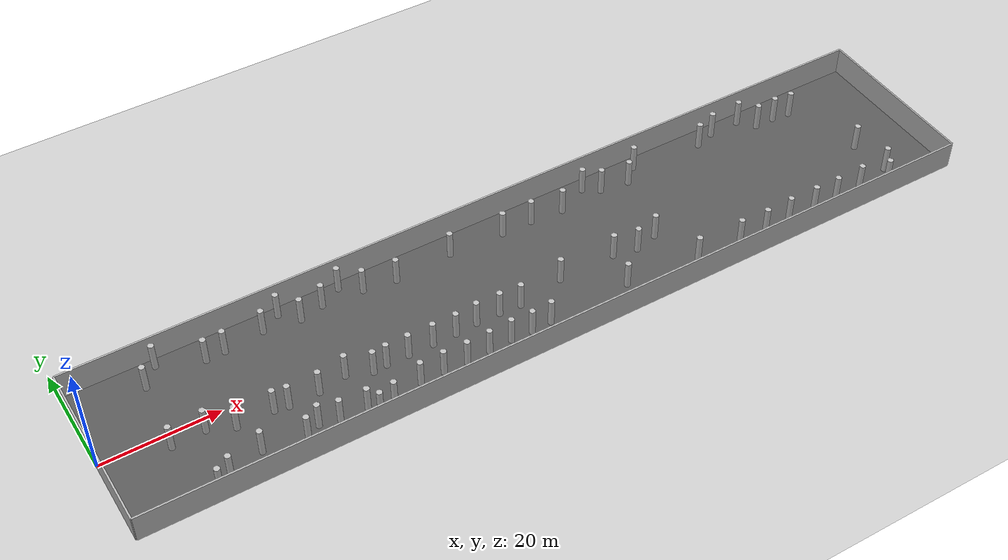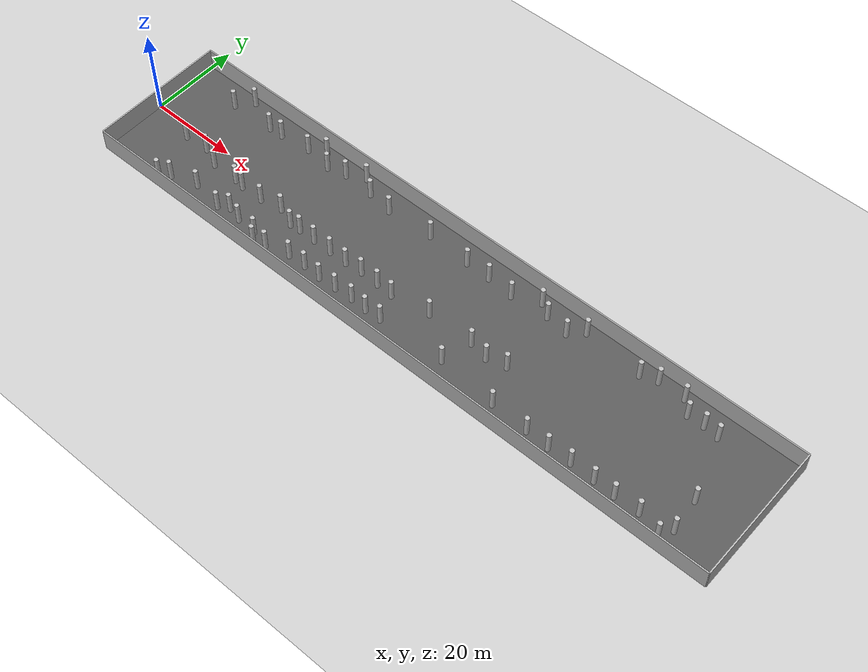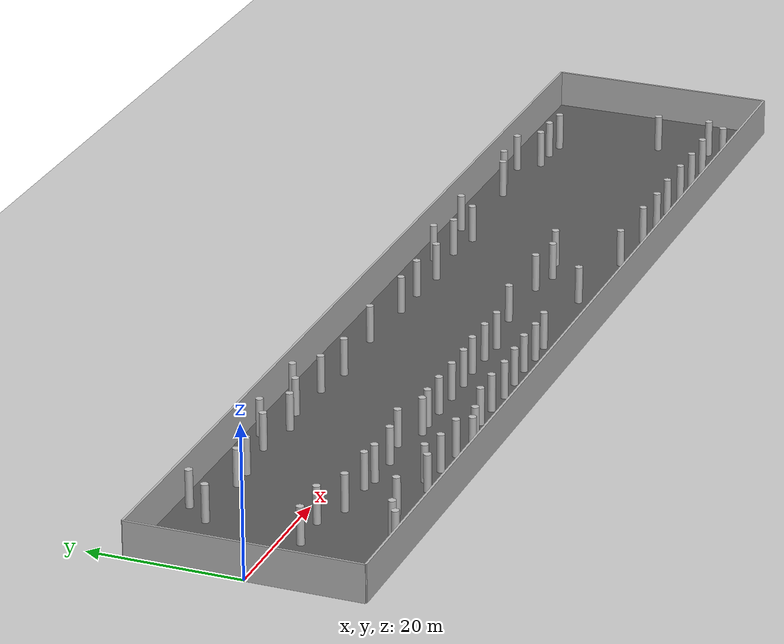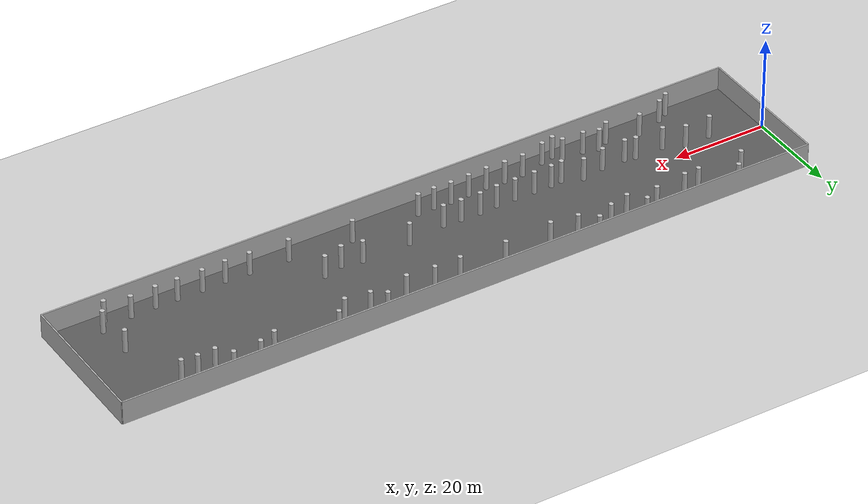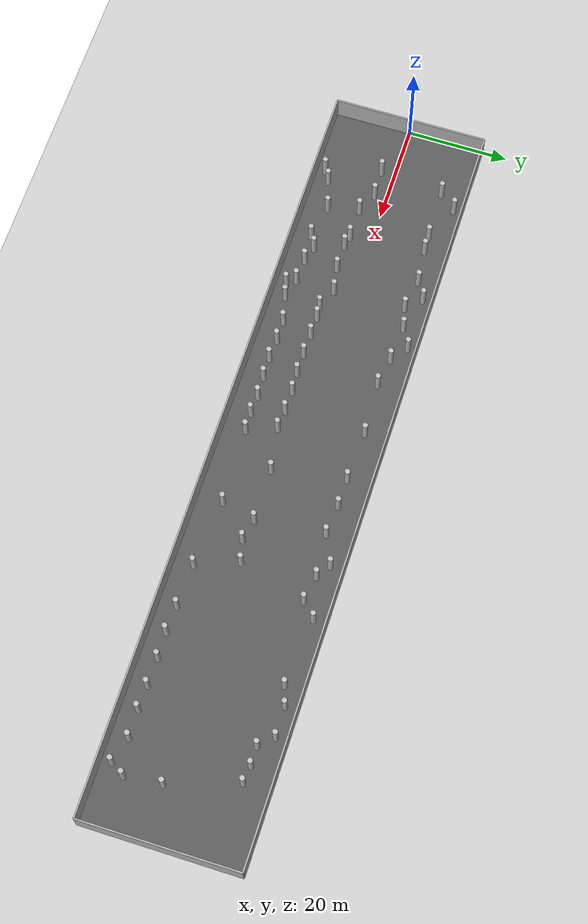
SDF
<?xml version="1.0" ?>
<sdf version="1.5">
  <world name="default">
    <plugin name="gazebo_ros_state" filename="libgazebo_ros_state.so">
      <ros>
        <namespace>/gazebo</namespace>
      </ros>
      <update_rate>20.0</update_rate>
    </plugin>

    <include><uri>model://sun</uri></include>
    <include><uri>model://ground_plane</uri></include>

    <model name="corridor_floor">
      <static>true</static>
      <pose>75 0 0.01 0 0 0</pose>
      <link name="link">
        <collision name="collision">
          <geometry><box><size>150 30 0.02</size></box></geometry>
        </collision>
        <visual name="visual">
          <geometry><box><size>150 30 0.02</size></box></geometry>
          <material>
            <ambient>0.25 0.25 0.25 1</ambient>
            <diffuse>0.35 0.35 0.35 1</diffuse>
          </material>
        </visual>
      </link>
    </model>

    <physics name="default_physics" default="0" type="ode">
      <gravity>0 0 -9.8066</gravity>
      <ode>
        <solver>
          <type>quick</type>
          <iters>10</iters>
          <sor>1.3</sor>
          <use_dynamic_moi_rescaling>0</use_dynamic_moi_rescaling>
        </solver>
        <constraints>
          <cfm>0</cfm>
          <erp>0.2</erp>
          <contact_max_correcting_vel>100</contact_max_correcting_vel>
          <contact_surface_layer>0.001</contact_surface_layer>
        </constraints>
      </ode>
      <max_step_size>0.004</max_step_size>
      <real_time_factor>1</real_time_factor>
      <real_time_update_rate>250</real_time_update_rate>
      <magnetic_field>6.0e-6 2.3e-5 -4.2e-5</magnetic_field>
    </physics>

    <model name="left_wall">
      <static>true</static>
      <pose>75 15.15 2.5 0 0 0</pose>
      <link name="link">
        <collision name="collision">
          <geometry><box><size>150 0.3 5</size></box></geometry>
        </collision>
        <visual name="visual">
          <geometry><box><size>150 0.3 5</size></box></geometry>
        </visual>
      </link>
    </model>

    <model name="right_wall">
      <static>true</static>
      <pose>75 -15.15 2.5 0 0 0</pose>
      <link name="link">
        <collision name="collision">
          <geometry><box><size>150 0.3 5</size></box></geometry>
        </collision>
        <visual name="visual">
          <geometry><box><size>150 0.3 5</size></box></geometry>
        </visual>
      </link>
    </model>

    <model name="start_wall">
      <static>true</static>
      <pose>0 0 2.5 0 0 0</pose>
      <link name="link">
        <collision name="collision">
          <geometry><box><size>0.3 30.3 5</size></box></geometry>
        </collision>
        <visual name="visual">
          <geometry><box><size>0.3 30.3 5</size></box></geometry>
        </visual>
      </link>
    </model>

    <model name="end_wall">
      <static>true</static>
      <pose>150 0 2.5 0 0 0</pose>
      <link name="link">
        <collision name="collision">
          <geometry><box><size>0.3 30.3 5</size></box></geometry>
        </collision>
        <visual name="visual">
          <geometry><box><size>0.3 30.3 5</size></box></geometry>
        </visual>
      </link>
    </model>

    <include><name>cylinder_000</name><uri>model://cylinder_r05_h5</uri><pose>34.043 -4.553 2.5 0 0 0</pose></include>
    <include><name>cylinder_001</name><uri>model://cylinder_r05_h5</uri><pose>38.897 -3.656 2.5 0 0 0</pose></include>
    <include><name>cylinder_002</name><uri>model://cylinder_r05_h5</uri><pose>20.478 -4.209 2.5 0 0 0</pose></include>
    <include><name>cylinder_003</name><uri>model://cylinder_r05_h5</uri><pose>42.962 -5.268 2.5 0 0 0</pose></include>
    <include><name>cylinder_004</name><uri>model://cylinder_r05_h5</uri><pose>28.906 -4.637 2.5 0 0 0</pose></include>
    <include><name>cylinder_005</name><uri>model://cylinder_r05_h5</uri><pose>28.742 -11.474 2.5 0 0 0</pose></include>
    <include><name>cylinder_006</name><uri>model://cylinder_r05_h5</uri><pose>42.867 -12.214 2.5 0 0 0</pose></include>
    <include><name>cylinder_007</name><uri>model://cylinder_r05_h5</uri><pose>21.792 -10.279 2.5 0 0 0</pose></include>
    <include><name>cylinder_008</name><uri>model://cylinder_r05_h5</uri><pose>16.302 -2.364 2.5 0 0 0</pose></include>
    <include><name>cylinder_009</name><uri>model://cylinder_r05_h5</uri><pose>40.117 -12.899 2.5 0 0 0</pose></include>
    <include><name>cylinder_010</name><uri>model://cylinder_r05_h5</uri><pose>26.634 -4.218 2.5 0 0 0</pose></include>
    <include><name>cylinder_011</name><uri>model://cylinder_r05_h5</uri><pose>34.293 -11.043 2.5 0 0 0</pose></include>
    <include><name>cylinder_012</name><uri>model://cylinder_r05_h5</uri><pose>38.823 -11.265 2.5 0 0 0</pose></include>
    <include><name>cylinder_013</name><uri>model://cylinder_r05_h5</uri><pose>15.990 -12.023 2.5 0 0 0</pose></include>
    <include><name>cylinder_014</name><uri>model://cylinder_r05_h5</uri><pose>31.105 -10.195 2.5 0 0 0</pose></include>
    <include><name>cylinder_015</name><uri>model://cylinder_r05_h5</uri><pose>48.099 -10.920 2.5 0 0 0</pose></include>
    <include><name>cylinder_016</name><uri>model://cylinder_r05_h5</uri><pose>45.356 -5.039 2.5 0 0 0</pose></include>
    <include><name>cylinder_017</name><uri>model://cylinder_r05_h5</uri><pose>52.185 -10.852 2.5 0 0 0</pose></include>
    <include><name>cylinder_018</name><uri>model://cylinder_r05_h5</uri><pose>49.200 -5.058 2.5 0 0 0</pose></include>
    <include><name>cylinder_019</name><uri>model://cylinder_r05_h5</uri><pose>56.236 -11.044 2.5 0 0 0</pose></include>
    <include><name>cylinder_020</name><uri>model://cylinder_r05_h5</uri><pose>53.532 -5.076 2.5 0 0 0</pose></include>
    <include><name>cylinder_021</name><uri>model://cylinder_r05_h5</uri><pose>60.306 -10.872 2.5 0 0 0</pose></include>
    <include><name>cylinder_022</name><uri>model://cylinder_r05_h5</uri><pose>57.645 -5.074 2.5 0 0 0</pose></include>
    <include><name>cylinder_023</name><uri>model://cylinder_r05_h5</uri><pose>64.389 -10.636 2.5 0 0 0</pose></include>
    <include><name>cylinder_024</name><uri>model://cylinder_r05_h5</uri><pose>61.538 -4.758 2.5 0 0 0</pose></include>
    <include><name>cylinder_025</name><uri>model://cylinder_r05_h5</uri><pose>68.097 -10.812 2.5 0 0 0</pose></include>
    <include><name>cylinder_026</name><uri>model://cylinder_r05_h5</uri><pose>65.741 -4.838 2.5 0 0 0</pose></include>
    <include><name>cylinder_027</name><uri>model://cylinder_r05_h5</uri><pose>71.695 -10.627 2.5 0 0 0</pose></include>
    <include><name>cylinder_028</name><uri>model://cylinder_r05_h5</uri><pose>69.537 -5.051 2.5 0 0 0</pose></include>
    <include><name>cylinder_029</name><uri>model://cylinder_r05_h5</uri><pose>96.625 -3.223 2.5 0 0 0</pose></include>
    <include><name>cylinder_030</name><uri>model://cylinder_r05_h5</uri><pose>99.741 -11.229 2.5 0 0 0</pose></include>
    <include><name>cylinder_031</name><uri>model://cylinder_r05_h5</uri><pose>92.456 -4.331 2.5 0 0 0</pose></include>
    <include><name>cylinder_032</name><uri>model://cylinder_r05_h5</uri><pose>86.567 -10.058 2.5 0 0 0</pose></include>
    <include><name>cylinder_033</name><uri>model://cylinder_r05_h5</uri><pose>88.224 -3.495 2.5 0 0 0</pose></include>
    <include><name>cylinder_034</name><uri>model://cylinder_r05_h5</uri><pose>77.919 -3.589 2.5 0 0 0</pose></include>
    <include><name>cylinder_035</name><uri>model://cylinder_r05_h5</uri><pose>108.022 -11.546 2.5 0 0 0</pose></include>
    <include><name>cylinder_036</name><uri>model://cylinder_r05_h5</uri><pose>113.137 -11.769 2.5 0 0 0</pose></include>
    <include><name>cylinder_037</name><uri>model://cylinder_r05_h5</uri><pose>118.126 -11.574 2.5 0 0 0</pose></include>
    <include><name>cylinder_038</name><uri>model://cylinder_r05_h5</uri><pose>123.417 -11.662 2.5 0 0 0</pose></include>
    <include><name>cylinder_039</name><uri>model://cylinder_r05_h5</uri><pose>127.974 -11.774 2.5 0 0 0</pose></include>
    <include><name>cylinder_040</name><uri>model://cylinder_r05_h5</uri><pose>133.275 -11.575 2.5 0 0 0</pose></include>
    <include><name>cylinder_041</name><uri>model://cylinder_r05_h5</uri><pose>10.729 -2.613 2.5 0 0 0</pose></include>
    <include><name>cylinder_042</name><uri>model://cylinder_r05_h5</uri><pose>13.727 -13.332 2.5 0 0 0</pose></include>
    <include><name>cylinder_043</name><uri>model://cylinder_r05_h5</uri><pose>139.185 -3.190 2.5 0 0 0</pose></include>
    <include><name>cylinder_044</name><uri>model://cylinder_r05_h5</uri><pose>138.230 -12.940 2.5 0 0 0</pose></include>
    <include><name>cylinder_045</name><uri>model://cylinder_r05_h5</uri><pose>139.875 -10.329 2.5 0 0 0</pose></include>
    <include><name>cylinder_046</name><uri>model://cylinder_r05_h5</uri><pose>25.240 10.491 2.5 0 0 0</pose></include>
    <include><name>cylinder_047</name><uri>model://cylinder_r05_h5</uri><pose>86.843 9.879 2.5 0 0 0</pose></include>
    <include><name>cylinder_048</name><uri>model://cylinder_r05_h5</uri><pose>38.308 10.334 2.5 0 0 0</pose></include>
    <include><name>cylinder_049</name><uri>model://cylinder_r05_h5</uri><pose>49.613 10.890 2.5 0 0 0</pose></include>
    <include><name>cylinder_050</name><uri>model://cylinder_r05_h5</uri><pose>125.438 12.786 2.5 0 0 0</pose></include>
    <include><name>cylinder_051</name><uri>model://cylinder_r05_h5</uri><pose>134.780 9.918 2.5 0 0 0</pose></include>
    <include><name>cylinder_052</name><uri>model://cylinder_r05_h5</uri><pose>42.511 11.322 2.5 0 0 0</pose></include>
    <include><name>cylinder_053</name><uri>model://cylinder_r05_h5</uri><pose>80.943 10.324 2.5 0 0 0</pose></include>
    <include><name>cylinder_054</name><uri>model://cylinder_r05_h5</uri><pose>35.558 13.153 2.5 0 0 0</pose></include>
    <include><name>cylinder_055</name><uri>model://cylinder_r05_h5</uri><pose>75.418 10.334 2.5 0 0 0</pose></include>
    <include><name>cylinder_056</name><uri>model://cylinder_r05_h5</uri><pose>95.111 10.624 2.5 0 0 0</pose></include>
    <include><name>cylinder_057</name><uri>model://cylinder_r05_h5</uri><pose>22.006 10.352 2.5 0 0 0</pose></include>
    <include><name>cylinder_058</name><uri>model://cylinder_r05_h5</uri><pose>46.365 13.343 2.5 0 0 0</pose></include>
    <include><name>cylinder_059</name><uri>model://cylinder_r05_h5</uri><pose>119.665 12.613 2.5 0 0 0</pose></include>
    <include><name>cylinder_060</name><uri>model://cylinder_r05_h5</uri><pose>103.020 12.545 2.5 0 0 0</pose></include>
    <include><name>cylinder_061</name><uri>model://cylinder_r05_h5</uri><pose>127.874 10.198 2.5 0 0 0</pose></include>
    <include><name>cylinder_062</name><uri>model://cylinder_r05_h5</uri><pose>55.296 10.094 2.5 0 0 0</pose></include>
    <include><name>cylinder_063</name><uri>model://cylinder_r05_h5</uri><pose>11.974 10.047 2.5 0 0 0</pose></include>
    <include><name>cylinder_064</name><uri>model://cylinder_r05_h5</uri><pose>100.213 9.881 2.5 0 0 0</pose></include>
    <include><name>cylinder_065</name><uri>model://cylinder_r05_h5</uri><pose>65.638 10.743 2.5 0 0 0</pose></include>
    <include><name>cylinder_066</name><uri>model://cylinder_r05_h5</uri><pose>131.518 10.262 2.5 0 0 0</pose></include>
    <include><name>cylinder_067</name><uri>model://cylinder_r05_h5</uri><pose>32.099 11.229 2.5 0 0 0</pose></include>
    <include><name>cylinder_068</name><uri>model://cylinder_r05_h5</uri><pose>14.809 13.368 2.5 0 0 0</pose></include>
    <include><name>cylinder_069</name><uri>model://cylinder_r05_h5</uri><pose>116.118 11.437 2.5 0 0 0</pose></include>
    <include><name>cylinder_070</name><uri>model://cylinder_r05_h5</uri><pose>92.426 12.428 2.5 0 0 0</pose></include>

  </world>
</sdf>

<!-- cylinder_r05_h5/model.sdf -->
<sdf version="1.5">
  <model name="cylinder_r05_h5">
    <static>true</static>
    <link name="link">
      <collision name="collision">
        <geometry>
          <cylinder>
            <radius>0.5</radius>
            <length>5</length>
          </cylinder>
        </geometry>
      </collision>
      <visual name="visual">
        <geometry>
          <cylinder>
            <radius>0.5</radius>
            <length>5</length>
          </cylinder>
        </geometry>
        <material>
          <ambient>0.5 0.5 0.5 1</ambient>
          <diffuse>0.75 0.75 0.75 1</diffuse>
        </material>
      </visual>
    </link>
  </model>
</sdf>
